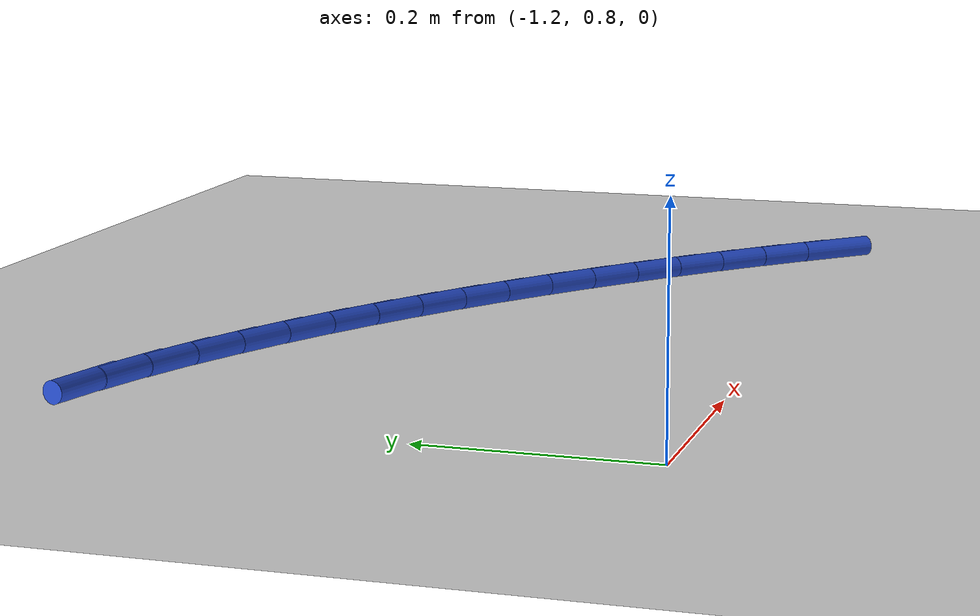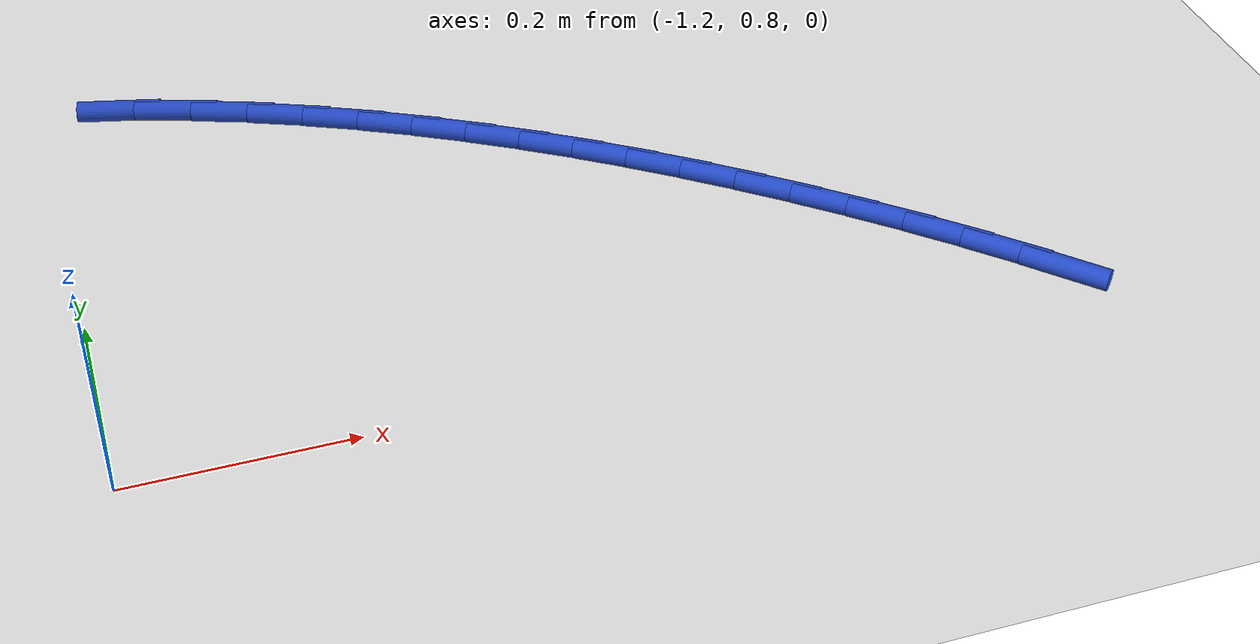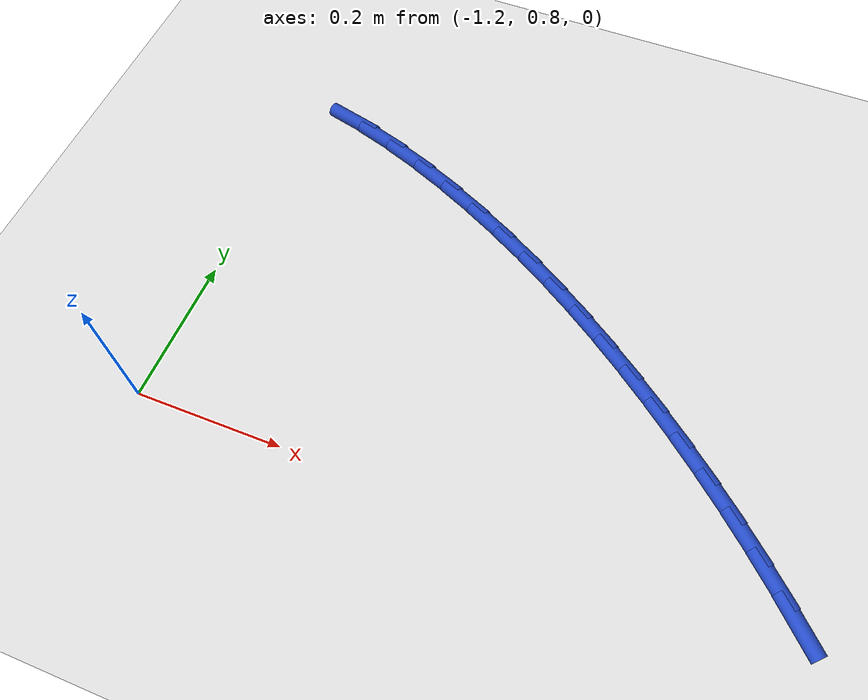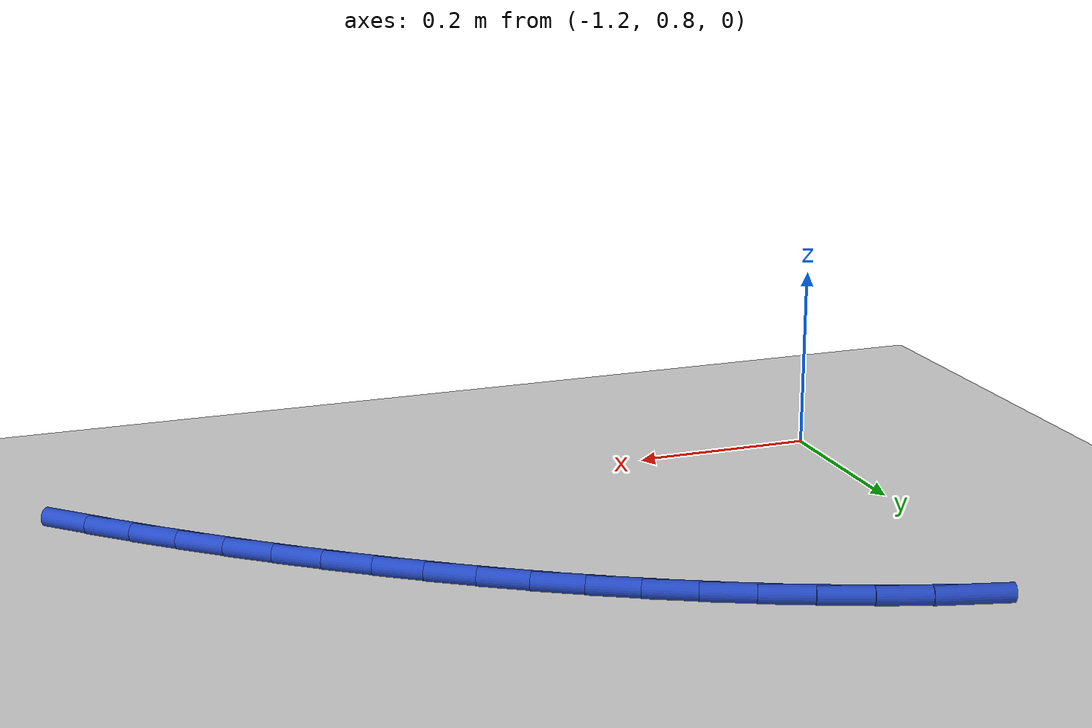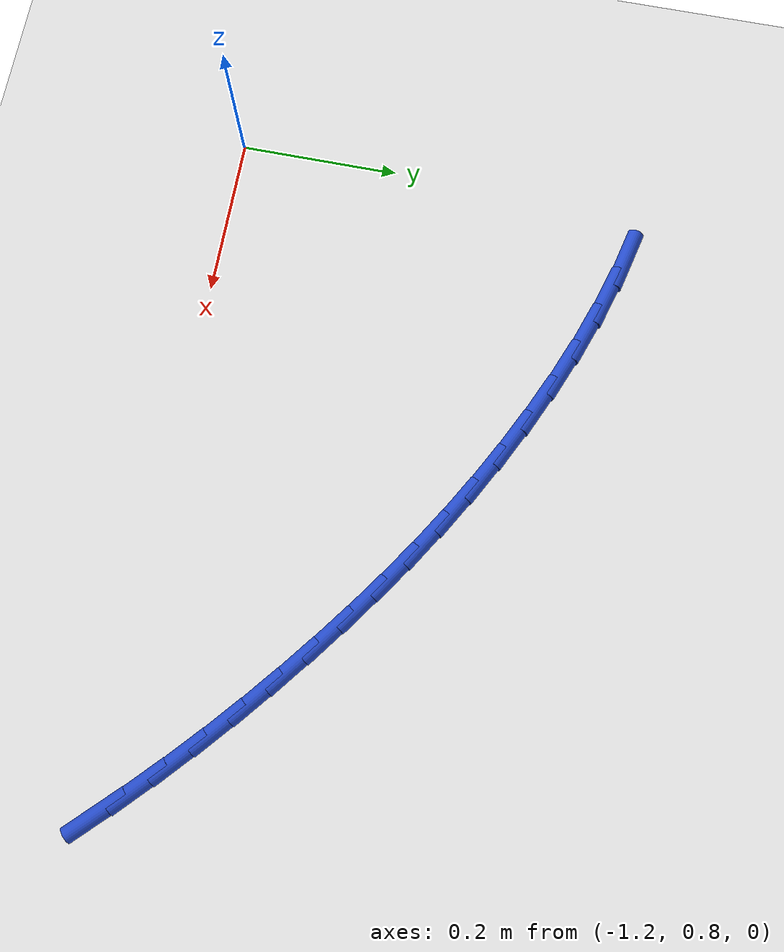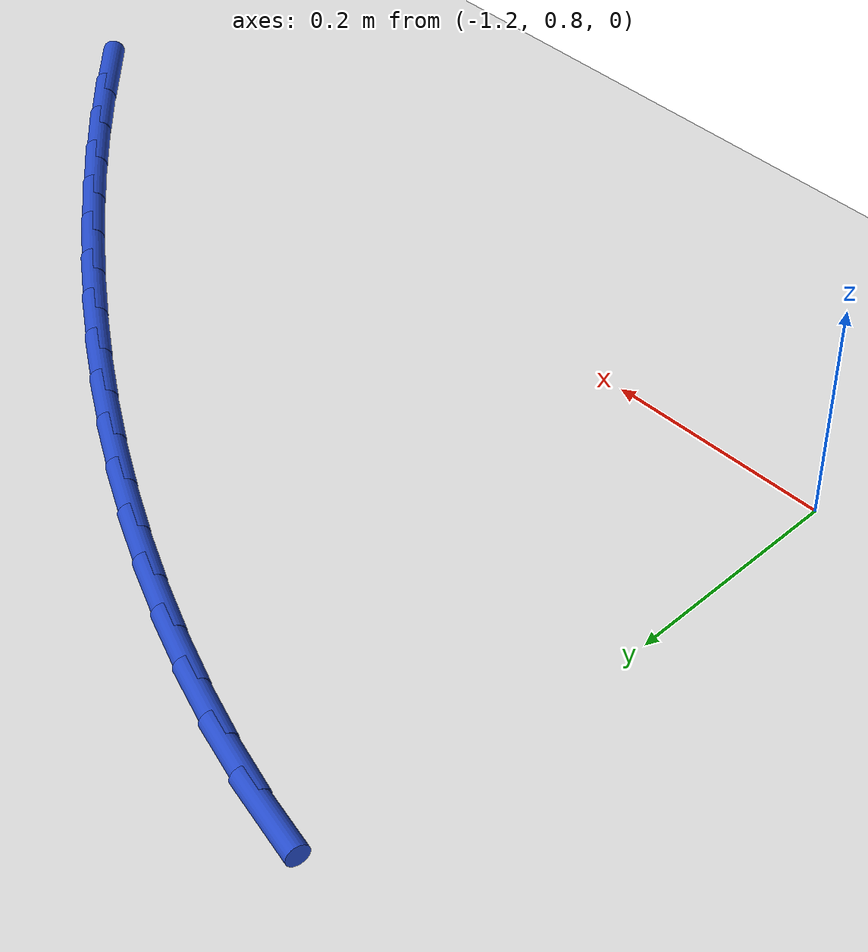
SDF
<sdf version="1.6">
 <world name="default">
  <model name="ground_plane">
   <static>1</static>
   <link name="link">
    <collision name="collision">
     <geometry><plane><normal>0 0 1</normal><size>100 100</size></plane></geometry>
     <surface><friction><ode><mu>100</mu><mu2>50</mu2></ode></friction></surface>
    </collision>
    <visual name="visual">
     <cast_shadows>0</cast_shadows>
     <geometry><plane><normal>0 0 1</normal><size>100 100</size></plane></geometry>
     <material>
      <script><uri>file://media/materials/scripts/gazebo.material</uri><name>Gazebo/WhiteGlow</name></script>
     </material>
    </visual>
   </link>
  </model>
  <model name="line">
   <link name="link_17">
    <pose>-0.3639546904659299 0.8151618243862675 0.01 0 1.57 -0.7950358378202791</pose>
    <collision name="collision">
     <geometry><cylinder><radius>0.01</radius><length>0.08</length></cylinder></geometry>
    </collision>
    <visual name="visual">
     <material>
      <script><name>Gazebo/Blue</name><uri>file://media/materials/scripts/gazebo.material</uri></script>
     </material>
     <geometry><cylinder><radius>0.01</radius><length>0.08</length></cylinder></geometry>
    </visual>
   </link>
   <link name="link_18">
    <pose>-0.4018190358148197 0.8537631437340569 0.01 0 1.57 -0.7664501071483063</pose>
    <collision name="collision">
     <geometry><cylinder><radius>0.01</radius><length>0.08</length></cylinder></geometry>
    </collision>
    <visual name="visual">
     <material>
      <script><name>Gazebo/Blue</name><uri>file://media/materials/scripts/gazebo.material</uri></script>
     </material>
     <geometry><cylinder><radius>0.01</radius><length>0.08</length></cylinder></geometry>
    </visual>
   </link>
   <link name="link_19">
    <pose>-0.4407467069413172 0.8912428699098098 0.01 0 1.57 -0.7394078043981044</pose>
    <collision name="collision">
     <geometry><cylinder><radius>0.01</radius><length>0.08</length></cylinder></geometry>
    </collision>
    <visual name="visual">
     <material>
      <script><name>Gazebo/Blue</name><uri>file://media/materials/scripts/gazebo.material</uri></script>
     </material>
     <geometry><cylinder><radius>0.01</radius><length>0.08</length></cylinder></geometry>
    </visual>
   </link>
   <link name="link_20">
    <pose>-0.4806130072139513 0.9276011028661236 0.01 0 1.57 -0.7138188314695952</pose>
    <collision name="collision">
     <geometry><cylinder><radius>0.01</radius><length>0.08</length></cylinder></geometry>
    </collision>
    <visual name="visual">
     <material>
      <script><name>Gazebo/Blue</name><uri>file://media/materials/scripts/gazebo.material</uri></script>
     </material>
     <geometry><cylinder><radius>0.01</radius><length>0.08</length></cylinder></geometry>
    </visual>
   </link>
   <link name="link_21">
    <pose>-0.5212932400012517 0.9628379425555968 0.01 0 1.57 -0.6895948326223554</pose>
    <collision name="collision">
     <geometry><cylinder><radius>0.01</radius><length>0.08</length></cylinder></geometry>
    </collision>
    <visual name="visual">
     <material>
      <script><name>Gazebo/Blue</name><uri>file://media/materials/scripts/gazebo.material</uri></script>
     </material>
     <geometry><cylinder><radius>0.01</radius><length>0.08</length></cylinder></geometry>
    </visual>
   </link>
   <link name="link_22">
    <pose>-0.5626627086717477 0.9969534889308276 0.01 0 1.57 -0.6664325448362454</pose>
    <collision name="collision">
     <geometry><cylinder><radius>0.01</radius><length>0.08</length></cylinder></geometry>
    </collision>
    <visual name="visual">
     <material>
      <script><name>Gazebo/Blue</name><uri>file://media/materials/scripts/gazebo.material</uri></script>
     </material>
     <geometry><cylinder><radius>0.01</radius><length>0.08</length></cylinder></geometry>
    </visual>
   </link>
   <link name="link_23">
    <pose>-0.604612770365231 1.0299456975328671 0.01 0 1.57 -0.6422736655266684</pose>
    <collision name="collision">
     <geometry><cylinder><radius>0.01</radius><length>0.08</length></cylinder></geometry>
    </collision>
    <visual name="visual">
     <material>
      <script><name>Gazebo/Blue</name><uri>file://media/materials/scripts/gazebo.material</uri></script>
     </material>
     <geometry><cylinder><radius>0.01</radius><length>0.08</length></cylinder></geometry>
    </visual>
   </link>
   <link name="link_24">
    <pose>-0.6471840494193232 1.0617925852667107 0.01 0 1.57 -0.6161100735033561</pose>
    <collision name="collision">
     <geometry><cylinder><radius>0.01</radius><length>0.08</length></cylinder></geometry>
    </collision>
    <visual name="visual">
     <material>
      <script><name>Gazebo/Blue</name><uri>file://media/materials/scripts/gazebo.material</uri></script>
     </material>
     <geometry><cylinder><radius>0.01</radius><length>0.08</length></cylinder></geometry>
    </visual>
   </link>
   <link name="link_25">
    <pose>-0.690498267277702 1.0924613363446625 0.01 0 1.57 -0.5880741647231125</pose>
    <collision name="collision">
     <geometry><cylinder><radius>0.01</radius><length>0.08</length></cylinder></geometry>
    </collision>
    <visual name="visual">
     <material>
      <script><name>Gazebo/Blue</name><uri>file://media/materials/scripts/gazebo.material</uri></script>
     </material>
     <geometry><cylinder><radius>0.01</radius><length>0.08</length></cylinder></geometry>
    </visual>
   </link>
   <link name="link_26">
    <pose>-0.734677953048937 1.1219190270937285 0.01 0 1.57 -0.5583430306676819</pose>
    <collision name="collision">
     <geometry><cylinder><radius>0.01</radius><length>0.08</length></cylinder></geometry>
    </collision>
    <visual name="visual">
     <material>
      <script><name>Gazebo/Blue</name><uri>file://media/materials/scripts/gazebo.material</uri></script>
     </material>
     <geometry><cylinder><radius>0.01</radius><length>0.08</length></cylinder></geometry>
    </visual>
   </link>
   <link name="link_27">
    <pose>-0.7798456358415969 1.150132733840913 0.01 0 1.57 -0.5271255613728094</pose>
    <collision name="collision">
     <geometry><cylinder><radius>0.01</radius><length>0.08</length></cylinder></geometry>
    </collision>
    <visual name="visual">
     <material>
      <script><name>Gazebo/Blue</name><uri>file://media/materials/scripts/gazebo.material</uri></script>
     </material>
     <geometry><cylinder><radius>0.01</radius><length>0.08</length></cylinder></geometry>
    </visual>
   </link>
   <link name="link_28">
    <pose>-0.826123844764251 1.1770695329132215 0.01 0 1.57 -0.49465869129787643</pose>
    <collision name="collision">
     <geometry><cylinder><radius>0.01</radius><length>0.08</length></cylinder></geometry>
    </collision>
    <visual name="visual">
     <material>
      <script><name>Gazebo/Blue</name><uri>file://media/materials/scripts/gazebo.material</uri></script>
     </material>
     <geometry><cylinder><radius>0.01</radius><length>0.08</length></cylinder></geometry>
    </visual>
   </link>
   <link name="link_29">
    <pose>-0.873635108925469 1.2026965006376595 0.01 0 1.57 -0.46119988137807816</pose>
    <collision name="collision">
     <geometry><cylinder><radius>0.01</radius><length>0.08</length></cylinder></geometry>
    </collision>
    <visual name="visual">
     <material>
      <script><name>Gazebo/Blue</name><uri>file://media/materials/scripts/gazebo.material</uri></script>
     </material>
     <geometry><cylinder><radius>0.01</radius><length>0.08</length></cylinder></geometry>
    </visual>
   </link>
   <link name="link_30">
    <pose>-0.9225017155278527 1.2269804712250076 0.01 0 1.57 -0.426180726905779</pose>
    <collision name="collision">
     <geometry><cylinder><radius>0.01</radius><length>0.08</length></cylinder></geometry>
    </collision>
    <visual name="visual">
     <material>
      <script><name>Gazebo/Blue</name><uri>file://media/materials/scripts/gazebo.material</uri></script>
     </material>
     <geometry><cylinder><radius>0.01</radius><length>0.08</length></cylinder></geometry>
    </visual>
   </link>
   <link name="link_31">
    <pose>-0.972752331127295 1.2497945768672378 0.01 0 1.57 -0.3873747355662771</pose>
    <collision name="collision">
     <geometry><cylinder><radius>0.01</radius><length>0.08</length></cylinder></geometry>
    </collision>
    <visual name="visual">
     <material>
      <script><name>Gazebo/Blue</name><uri>file://media/materials/scripts/gazebo.material</uri></script>
     </material>
     <geometry><cylinder><radius>0.01</radius><length>0.08</length></cylinder></geometry>
    </visual>
   </link>
   <link name="link_32">
    <pose>-1.0241806687030848 1.270776791965514 0.01 0 1.57 -0.34388318009219637</pose>
    <collision name="collision">
     <geometry><cylinder><radius>0.01</radius><length>0.08</length></cylinder></geometry>
    </collision>
    <visual name="visual">
     <material>
      <script><name>Gazebo/Blue</name><uri>file://media/materials/scripts/gazebo.material</uri></script>
     </material>
     <geometry><cylinder><radius>0.01</radius><length>0.08</length></cylinder></geometry>
    </visual>
   </link>
   <link name="link_33">
    <pose>-1.076544172377709 1.2895287905404553 0.01 0 1.57 -0.2950258008901564</pose>
    <collision name="collision">
     <geometry><cylinder><radius>0.01</radius><length>0.08</length></cylinder></geometry>
    </collision>
    <visual name="visual">
     <material>
      <script><name>Gazebo/Blue</name><uri>file://media/materials/scripts/gazebo.material</uri></script>
     </material>
     <geometry><cylinder><radius>0.01</radius><length>0.08</length></cylinder></geometry>
    </visual>
   </link>
   <link name="link_34">
    <pose>-1.1296002862736532 1.3056522466126814 0.01 0 1.57 -0.24004821847138225</pose>
    <collision name="collision">
     <geometry><cylinder><radius>0.01</radius><length>0.08</length></cylinder></geometry>
    </collision>
    <visual name="visual">
     <material>
      <script><name>Gazebo/Blue</name><uri>file://media/materials/scripts/gazebo.material</uri></script>
     </material>
     <geometry><cylinder><radius>0.01</radius><length>0.08</length></cylinder></geometry>
    </visual>
   </link>
  </model>
 </world>
</sdf>
